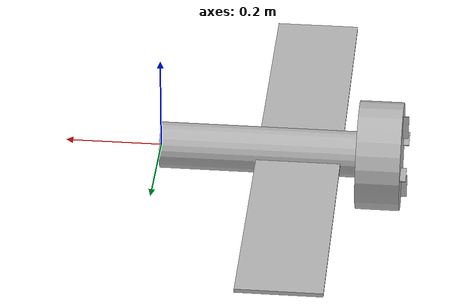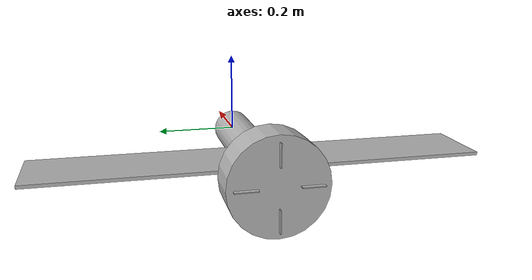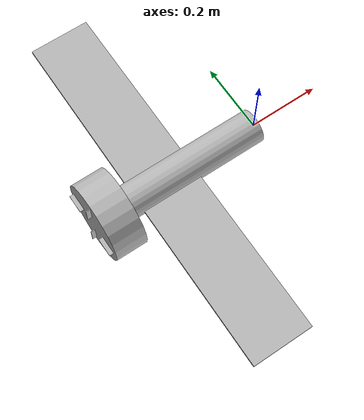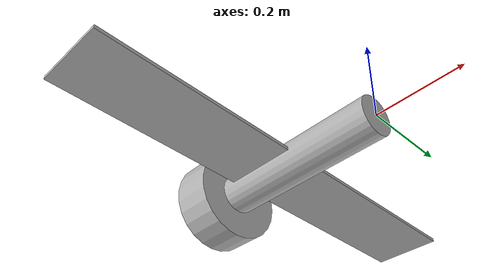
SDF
<?xml version="1.0"?>
<sdf version="1.9">
  <model name="vbat_tailsitter">

    <link name="base_link">
      <inertial>
        <pose>-0.23661 0 0 0 0 0</pose>
        <mass>2.2557</mass>
        <inertia>
          <ixx>0.021369</ixx>
          <iyy>0.040159</iyy>
          <izz>0.051713</izz>
          <ixy>0</ixy><ixz>0</ixz><iyz>0</iyz>
        </inertia>
      </inertial>

      <!-- fuselage: D 0.09565, L 0.47827 (out/fuselage.yaml) -->
      <collision name="fuselage_collision">
        <pose>-0.23914 0 0 0 1.5708 0</pose>
        <geometry><cylinder><radius>0.0478</radius><length>0.47827</length></cylinder></geometry>
      </collision>
      <visual name="fuselage_visual">
        <pose>-0.23914 0 0 0 1.5708 0</pose>
        <geometry><cylinder><radius>0.0478</radius><length>0.47827</length></cylinder></geometry>
      </visual>
      <!-- wing: LE station 0.20164, chord 0.17484, span 1.049 -->
      <visual name="wing_visual">
        <pose>-0.28906 0 0 0 0 0</pose>
        <geometry><box><size>0.17484 1.049 0.008</size></box></geometry>
      </visual>
      <!-- duct ring: D_outer 0.225, chord 0.09135 at station 0.4561 -->
      <visual name="duct_visual">
        <pose>-0.4561 0 0 0 1.5708 0</pose>
        <geometry><cylinder><radius>0.1125</radius><length>0.09135</length></cylinder></geometry>
      </visual>

      <sensor name="imu_sensor" type="imu">
        <always_on>1</always_on><update_rate>250</update_rate>
      </sensor>
      <sensor name="air_pressure_sensor" type="air_pressure">
        <always_on>1</always_on><update_rate>50</update_rate>
      </sensor>
      <sensor name="magnetometer_sensor" type="magnetometer">
        <always_on>1</always_on><update_rate>100</update_rate>
      </sensor>
      <sensor name="navsat_sensor" type="navsat">
        <always_on>1</always_on><update_rate>30</update_rate>
      </sensor>
      <sensor name="air_speed_sensor" type="air_speed">
        <always_on>1</always_on><update_rate>50</update_rate>
      </sensor>
    </link>

    <!-- ==== rotor (203 mm 3-blade prop disk, station 0.4424) ==== -->
    <link name="rotor_link">
      <pose>-0.4424 0 0 0 0 0</pose>
      <inertial>
        <mass>0.023</mass>
        <inertia><ixx>6e-5</ixx><iyy>3e-5</iyy><izz>3e-5</izz>
          <ixy>0</ixy><ixz>0</ixz><iyz>0</iyz></inertia>
      </inertial>
      <visual name="rotor_visual">
        <pose>0 0 0 0 1.5708 0</pose>
        <geometry><cylinder><radius>0.1015</radius><length>0.01</length></cylinder></geometry>
      </visual>
    </link>
    <joint name="rotor_joint" type="revolute">
      <parent>base_link</parent><child>rotor_link</child>
      <axis><xyz>1 0 0</xyz>
        <limit><lower>-1e16</lower><upper>1e16</upper></limit></axis>
    </joint>

    <!-- ====== jet vanes: hinge station 0.50363, R_mid 0.07105, ======
         ====== span 0.0518 x chord 0.0207, hinge at 0.25c        ====== -->
    <!-- vane T (FRD top = FLU +z); hinge axis radial (z) -->
    <link name="vane_t_link">
      <pose>-0.50363 0 0.07105 0 0 0</pose>
      <inertial><mass>0.00343</mass>
        <inertia><ixx>1e-7</ixx><iyy>1e-7</iyy><izz>1e-7</izz>
          <ixy>0</ixy><ixz>0</ixz><iyz>0</iyz></inertia></inertial>
      <visual name="vane_t_visual">
        <geometry><box><size>0.0207 0.002 0.0518</size></box></geometry>
      </visual>
    </link>
    <joint name="vane_t_joint" type="revolute">
      <parent>base_link</parent><child>vane_t_link</child>
      <axis><xyz>0 0 1</xyz>
        <limit><lower>-0.349</lower><upper>0.349</upper></limit></axis>
      <!-- +/-20 deg hard stop (delta_max_deg); usable range to the
           15 deg stall limit is enforced in PX4 output scaling -->
    </joint>

    <!-- vane B (FRD bottom = FLU -z) -->
    <link name="vane_b_link">
      <pose>-0.50363 0 -0.07105 0 0 0</pose>
      <inertial><mass>0.00343</mass>
        <inertia><ixx>1e-7</ixx><iyy>1e-7</iyy><izz>1e-7</izz>
          <ixy>0</ixy><ixz>0</ixz><iyz>0</iyz></inertia></inertial>
      <visual name="vane_b_visual">
        <geometry><box><size>0.0207 0.002 0.0518</size></box></geometry>
      </visual>
    </link>
    <joint name="vane_b_joint" type="revolute">
      <parent>base_link</parent><child>vane_b_link</child>
      <axis><xyz>0 0 1</xyz>
        <limit><lower>-0.349</lower><upper>0.349</upper></limit></axis>
    </joint>

    <!-- vane L (FRD left = FLU +y); hinge axis radial (y) -->
    <link name="vane_l_link">
      <pose>-0.50363 0.07105 0 0 0 0</pose>
      <inertial><mass>0.00343</mass>
        <inertia><ixx>1e-7</ixx><iyy>1e-7</iyy><izz>1e-7</izz>
          <ixy>0</ixy><ixz>0</ixz><iyz>0</iyz></inertia></inertial>
      <visual name="vane_l_visual">
        <geometry><box><size>0.0207 0.0518 0.002</size></box></geometry>
      </visual>
    </link>
    <joint name="vane_l_joint" type="revolute">
      <parent>base_link</parent><child>vane_l_link</child>
      <axis><xyz>0 1 0</xyz>
        <limit><lower>-0.349</lower><upper>0.349</upper></limit></axis>
    </joint>

    <!-- vane R (FRD right = FLU -y) -->
    <link name="vane_r_link">
      <pose>-0.50363 -0.07105 0 0 0 0</pose>
      <inertial><mass>0.00343</mass>
        <inertia><ixx>1e-7</ixx><iyy>1e-7</iyy><izz>1e-7</izz>
          <ixy>0</ixy><ixz>0</ixz><iyz>0</iyz></inertia></inertial>
      <visual name="vane_r_visual">
        <geometry><box><size>0.0207 0.0518 0.002</size></box></geometry>
      </visual>
    </link>
    <joint name="vane_r_joint" type="revolute">
      <parent>base_link</parent><child>vane_r_link</child>
      <axis><xyz>0 1 0</xyz>
        <limit><lower>-0.349</lower><upper>0.349</upper></limit></axis>
    </joint>

    <!-- ====== ailerons: hinge station ~0.3555 (TE - c_ail), ======
         ====== y +/- 0.4930, span 0.0629 x chord 0.0210       ====== -->
    <link name="aileron_left_link">
      <pose>-0.3555 0.4930 0 0 0 0</pose>
      <inertial><mass>0.005</mass>
        <inertia><ixx>1e-7</ixx><iyy>1e-7</iyy><izz>1e-7</izz>
          <ixy>0</ixy><ixz>0</ixz><iyz>0</iyz></inertia></inertial>
      <visual name="aileron_left_visual">
        <geometry><box><size>0.0210 0.0629 0.004</size></box></geometry>
      </visual>
    </link>
    <joint name="aileron_left_joint" type="revolute">
      <parent>base_link</parent><child>aileron_left_link</child>
      <axis><xyz>0 1 0</xyz>
        <limit><lower>-0.349</lower><upper>0.349</upper></limit></axis>
    </joint>

    <link name="aileron_right_link">
      <pose>-0.3555 -0.4930 0 0 0 0</pose>
      <inertial><mass>0.005</mass>
        <inertia><ixx>1e-7</ixx><iyy>1e-7</iyy><izz>1e-7</izz>
          <ixy>0</ixy><ixz>0</ixz><iyz>0</iyz></inertia></inertial>
      <visual name="aileron_right_visual">
        <geometry><box><size>0.0210 0.0629 0.004</size></box></geometry>
      </visual>
    </link>
    <joint name="aileron_right_joint" type="revolute">
      <parent>base_link</parent><child>aileron_right_link</child>
      <axis><xyz>0 1 0</xyz>
        <limit><lower>-0.349</lower><upper>0.349</upper></limit></axis>
    </joint>

    <!-- ==================== motor model ==================== -->
    <!-- motorConstant: T = Cm*w^2 with hover 29.4 N (1.3 T/W) at
         w = 2*pi*203.5 Hz = 1278.8 rad/s (out/vibration.yaml)
         -> Cm = 1.80e-5; T_max 35 N -> w_max = 1394 rad/s -->
    <plugin filename="gz-sim-multicopter-motor-model-system"
            name="gz::sim::systems::MulticopterMotorModel">
      <jointName>rotor_joint</jointName>
      <linkName>rotor_link</linkName>
      <turningDirection>ccw</turningDirection>
      <motorConstant>1.80e-5</motorConstant>
      <momentConstant>0.001</momentConstant> <!-- stator cancels swirl;
                                                  token residual -->
      <maxRotVelocity>1394</maxRotVelocity>
      <timeConstantUp>0.05</timeConstantUp>
      <timeConstantDown>0.08</timeConstantDown>
      <commandSubTopic>command/motor_speed</commandSubTopic>
      <motorNumber>0</motorNumber>
      <motorType>velocity</motorType>
    </plugin>

    <!-- ============ servo position controllers ============ -->
    <plugin filename="gz-sim-joint-position-controller-system"
            name="gz::sim::systems::JointPositionController">
      <joint_name>vane_t_joint</joint_name><sub_topic>servo_0</sub_topic>
      <p_gain>2.0</p_gain><i_gain>0.1</i_gain>
    </plugin>
    <plugin filename="gz-sim-joint-position-controller-system"
            name="gz::sim::systems::JointPositionController">
      <joint_name>vane_b_joint</joint_name><sub_topic>servo_1</sub_topic>
      <p_gain>2.0</p_gain><i_gain>0.1</i_gain>
    </plugin>
    <plugin filename="gz-sim-joint-position-controller-system"
            name="gz::sim::systems::JointPositionController">
      <joint_name>vane_l_joint</joint_name><sub_topic>servo_2</sub_topic>
      <p_gain>2.0</p_gain><i_gain>0.1</i_gain>
    </plugin>
    <plugin filename="gz-sim-joint-position-controller-system"
            name="gz::sim::systems::JointPositionController">
      <joint_name>vane_r_joint</joint_name><sub_topic>servo_3</sub_topic>
      <p_gain>2.0</p_gain><i_gain>0.1</i_gain>
    </plugin>
    <plugin filename="gz-sim-joint-position-controller-system"
            name="gz::sim::systems::JointPositionController">
      <joint_name>aileron_left_joint</joint_name><sub_topic>servo_4</sub_topic>
      <p_gain>2.0</p_gain><i_gain>0.1</i_gain>
    </plugin>
    <plugin filename="gz-sim-joint-position-controller-system"
            name="gz::sim::systems::JointPositionController">
      <joint_name>aileron_right_joint</joint_name><sub_topic>servo_5</sub_topic>
      <p_gain>2.0</p_gain><i_gain>0.1</i_gain>
    </plugin>

    <plugin filename="gz-sim-lift-drag-system" name="gz::sim::systems::LiftDrag">
      <link_name>base_link</link_name>
      <air_density>1.225</air_density>
      <cla>4.9</cla><cla_stall>-3.85</cla_stall>
      <cda>0.0126</cda><cda_stall>-0.9</cda_stall>
      <alpha_stall>0.22</alpha_stall><a0>0.024</a0>
      <area>0.0917</area>
      <cp>-0.24535 0.26225 0</cp>
      <forward>1 0 0</forward><upward>0 0 1</upward>
      <control_joint_name>aileron_left_joint</control_joint_name>
      <control_joint_rad_to_cl>2.09</control_joint_rad_to_cl>
    </plugin>
    <plugin filename="gz-sim-lift-drag-system" name="gz::sim::systems::LiftDrag">
      <link_name>base_link</link_name>
      <air_density>1.225</air_density>
      <cla>4.9</cla><cla_stall>-3.85</cla_stall>
      <cda>0.0126</cda><cda_stall>-0.9</cda_stall>
      <alpha_stall>0.22</alpha_stall><a0>0.024</a0>
      <area>0.0917</area>
      <cp>-0.24535 -0.26225 0</cp>
      <forward>1 0 0</forward><upward>0 0 1</upward>
      <control_joint_name>aileron_right_joint</control_joint_name>
      <control_joint_rad_to_cl>2.09</control_joint_rad_to_cl>
    </plugin>

    <plugin filename="gz-sim-lift-drag-system" name="gz::sim::systems::LiftDrag">
      <link_name>vane_t_link</link_name>
      <air_density>1.225</air_density>
      <cla>5.34</cla><cla_stall>-4.0</cla_stall>
      <cda>0.02</cda><cda_stall>-0.5</cda_stall>
      <alpha_stall>0.262</alpha_stall><a0>0</a0>
      <area>1.072e-3</area>
      <cp>0 0 0</cp>
      <forward>1 0 0</forward><upward>0 1 0</upward>
    </plugin>
    <plugin filename="gz-sim-lift-drag-system" name="gz::sim::systems::LiftDrag">
      <link_name>vane_b_link</link_name>
      <air_density>1.225</air_density>
      <cla>5.34</cla><cla_stall>-4.0</cla_stall>
      <cda>0.02</cda><cda_stall>-0.5</cda_stall>
      <alpha_stall>0.262</alpha_stall><a0>0</a0>
      <area>1.072e-3</area>
      <cp>0 0 0</cp>
      <forward>1 0 0</forward><upward>0 1 0</upward>
    </plugin>
    <plugin filename="gz-sim-lift-drag-system" name="gz::sim::systems::LiftDrag">
      <link_name>vane_l_link</link_name>
      <air_density>1.225</air_density>
      <cla>5.34</cla><cla_stall>-4.0</cla_stall>
      <cda>0.02</cda><cda_stall>-0.5</cda_stall>
      <alpha_stall>0.262</alpha_stall><a0>0</a0>
      <area>1.072e-3</area>
      <cp>0 0 0</cp>
      <forward>1 0 0</forward><upward>0 0 1</upward>
    </plugin>
    <plugin filename="gz-sim-lift-drag-system" name="gz::sim::systems::LiftDrag">
      <link_name>vane_r_link</link_name>
      <air_density>1.225</air_density>
      <cla>5.34</cla><cla_stall>-4.0</cla_stall>
      <cda>0.02</cda><cda_stall>-0.5</cda_stall>
      <alpha_stall>0.262</alpha_stall><a0>0</a0>
      <area>1.072e-3</area>
      <cp>0 0 0</cp>
      <forward>1 0 0</forward><upward>0 0 1</upward>
    </plugin>

  </model>
</sdf>
